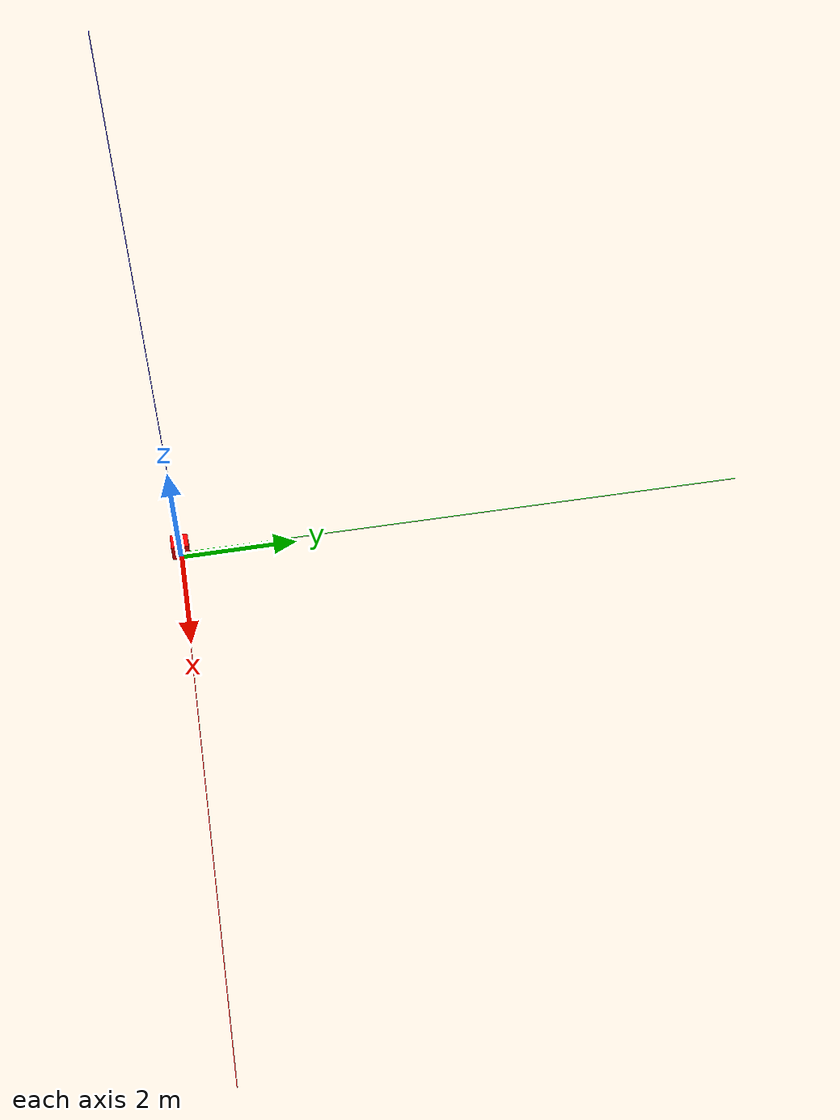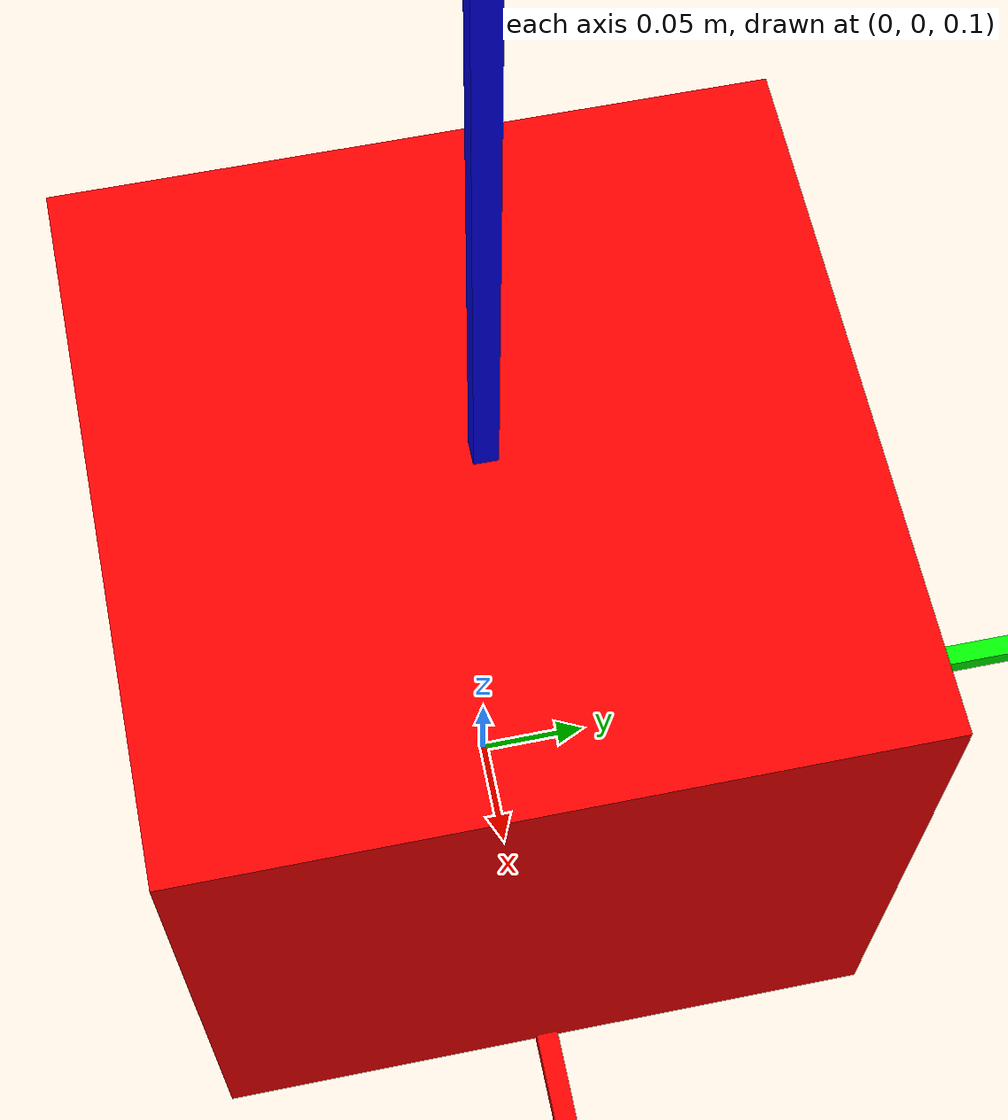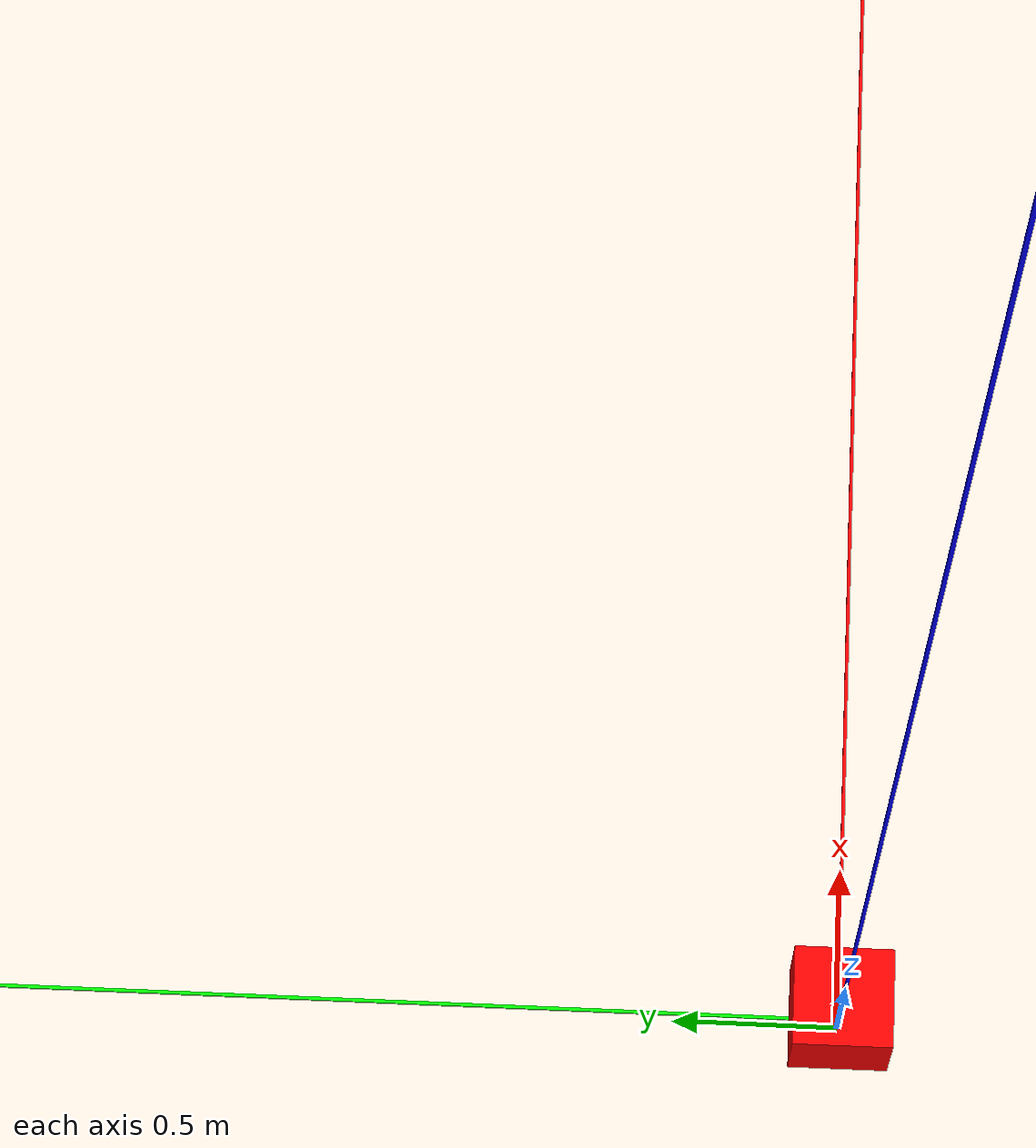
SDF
<sdf version="1.7">
 <world name="runway">
  <physics name="1ms" type="ignore">
   <max_step_size>0.001</max_step_size>
   <real_time_factor>1</real_time_factor>
  </physics>
  <plugin filename="gz-sim-physics-system" name="gz::sim::systems::Physics"/>
  <plugin filename="gz-sim-user-commands-system" name="gz::sim::systems::UserCommands"/>
  <plugin filename="gz-sim-scene-broadcaster-system" name="gz::sim::systems::SceneBroadcaster"/>
  <plugin filename="gz-sim-imu-system" name="gz::sim::systems::Imu"/>
  <plugin filename="gz-sim-navsat-system" name="gz::sim::systems::NavSat"/>
  <scene><ambient>1.0 1.0 1.0</ambient><background>0.8 0.8 0.8</background></scene>
  <spherical_coordinates>
   <latitude_deg>-35.363262</latitude_deg>
   <longitude_deg>149.165237</longitude_deg>
   <elevation>584</elevation>
   <heading_deg>0</heading_deg>
   <surface_model>EARTH_WGS84</surface_model>
  </spherical_coordinates>
  <light type="directional" name="sun">
   <pose>0 0 10 0 0 0</pose>
   <diffuse>0.8 0.8 0.8 1</diffuse>
   <specular>0.8 0.8 0.8 1</specular>
   <attenuation>
    <range>1000</range>
    <constant>0.9</constant>
    <linear>0.01</linear>
    <quadratic>0.001</quadratic>
   </attenuation>
   <direction>-0.5 0.1 -0.9</direction>
  </light>
  <model name="axes">
   <static>1</static>
   <link name="link">
    <visual name="r">
     <cast_shadows>0</cast_shadows>
     <pose>5 0 0.1 0 0 0</pose>
     <geometry><box><size>10 0.01 0.01</size></box></geometry>
     <material>
      <ambient>1 0 0 1</ambient>
      <diffuse>1 0 0 1</diffuse>
      <emissive>1 0 0 1</emissive>
      <specular>0.5 0.5 0.5 1</specular>
     </material>
    </visual>
    <visual name="g">
     <cast_shadows>0</cast_shadows>
     <pose>0 5 0.1 0 0 0</pose>
     <geometry><box><size>0.01 10 0.01</size></box></geometry>
     <material>
      <ambient>0 1 0 1</ambient>
      <diffuse>0 1 0 1</diffuse>
      <emissive>0 1 0 1</emissive>
      <specular>0.5 0.5 0.5 1</specular>
     </material>
    </visual>
    <visual name="b">
     <cast_shadows>0</cast_shadows>
     <pose>0 0 5.1 0 0 0</pose>
     <geometry><box><size>0.01 0.01 10</size></box></geometry>
     <material>
      <ambient>0 0 1 1</ambient>
      <diffuse>0 0 1 1</diffuse>
      <emissive>0 0 1 1</emissive>
      <specular>0.5 0.5 0.5 1</specular>
     </material>
    </visual>
   </link>
  </model>
  <include><pose degrees="true">0 0 0.25 0 0 90</pose><uri>model://omniquad</uri></include>
 </world>
</sdf>

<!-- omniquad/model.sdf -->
<sdf version="1.9">
  <model name="ombiquad">
    <link name="base_link">
      <inertial>
        <mass>1</mass>
        <inertia>
          <ixx>0.333</ixx>
          <ixy>0</ixy>
          <ixz>0</ixz>
          <iyy>0.333</iyy>
          <iyz>0</iyz>
          <izz>0.333</izz>
        </inertia>
      </inertial>
      <collision name="collision">
        <geometry>
          <box>
            <size>0.3 0.3 0.3</size>
          </box>
        </geometry>
      </collision>
      <visual name="visual">
        <geometry>
          <box>
            <size>0.3 0.3 0.3</size>
          </box>
        </geometry>
        <material>
          <ambient>1 0 0</ambient>
          <diffuse>1 0 0</diffuse>
          <specular>0.1 0.1 0.1</specular>
        </material>
      </visual>

      <!-- senors -->
      <sensor name="imu_sensor" type="imu">
        <pose degrees="true">0 0 0 180 0 0</pose>
        <always_on>1</always_on>
        <update_rate>1000.0</update_rate>
      </sensor>
    </link>
  </model>
</sdf>
